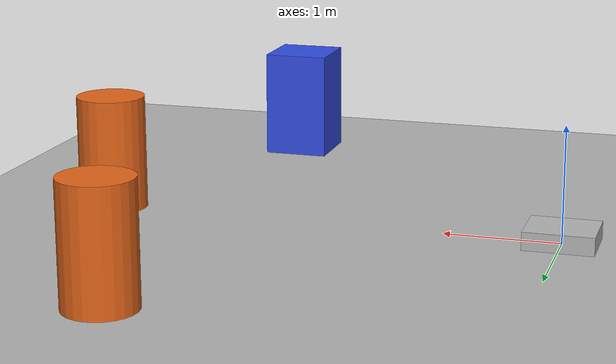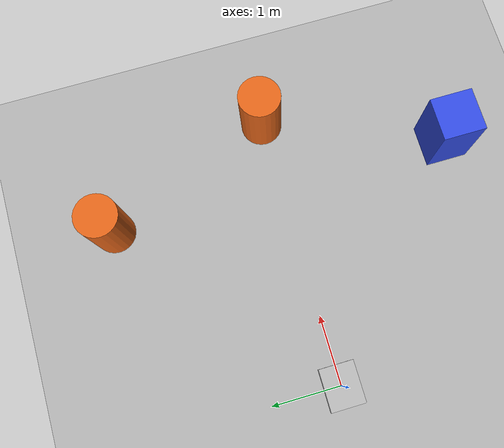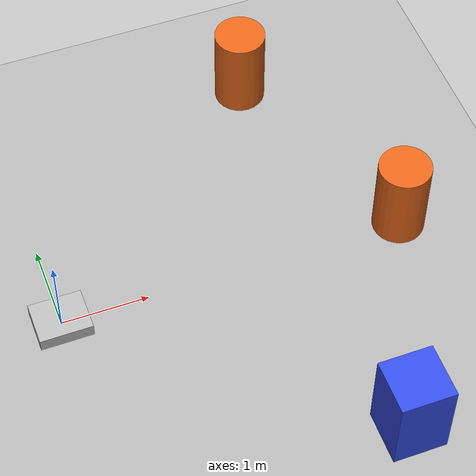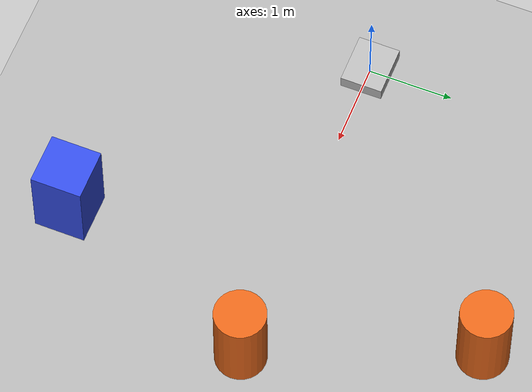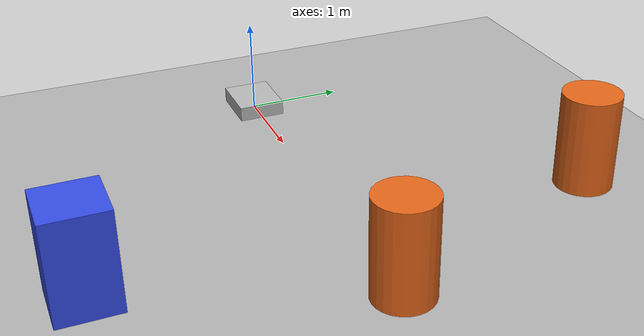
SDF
<?xml version="1.0" ?>
<sdf version="1.9">
  <world name="three_camera_load">

    <physics name="1ms" type="ignored">
      <max_step_size>0.001</max_step_size>
      <real_time_factor>1.0</real_time_factor>
    </physics>

    <plugin filename="gz-sim-physics-system"
            name="gz::sim::systems::Physics"/>
    <plugin filename="gz-sim-user-commands-system"
            name="gz::sim::systems::UserCommands"/>
    <plugin filename="gz-sim-scene-broadcaster-system"
            name="gz::sim::systems::SceneBroadcaster"/>
    <plugin filename="gz-sim-sensors-system"
            name="gz::sim::systems::Sensors">
      <render_engine>ogre2</render_engine>
    </plugin>

    <light type="directional" name="sun">
      <cast_shadows>true</cast_shadows>
      <pose>0 0 10 0 0 0</pose>
      <diffuse>0.9 0.9 0.9 1</diffuse>
      <specular>0.2 0.2 0.2 1</specular>
      <direction>-0.5 0.1 -0.9</direction>
    </light>

    <model name="ground_plane">
      <static>true</static>
      <link name="link">
        <collision name="collision">
          <geometry><plane><normal>0 0 1</normal><size>100 100</size></plane></geometry>
        </collision>
        <visual name="visual">
          <geometry><plane><normal>0 0 1</normal><size>100 100</size></plane></geometry>
          <material>
            <ambient>0.7 0.7 0.7 1</ambient>
            <diffuse>0.7 0.7 0.7 1</diffuse>
          </material>
        </visual>
      </link>
    </model>

    <!-- Give the depth cameras real geometry to resolve; an empty scene makes
         depth rendering unrealistically cheap. -->
    <model name="clutter_a">
      <pose>4 0 0.5 0 0 0</pose>
      <link name="link">
        <collision name="c"><geometry><cylinder><radius>0.3</radius><length>1.0</length></cylinder></geometry></collision>
        <visual name="v">
          <geometry><cylinder><radius>0.3</radius><length>1.0</length></cylinder></geometry>
          <material><ambient>0.9 0.4 0.1 1</ambient><diffuse>0.9 0.4 0.1 1</diffuse></material>
        </visual>
      </link>
    </model>
    <model name="clutter_b">
      <pose>3 2.5 0.5 0 0 0</pose>
      <link name="link">
        <collision name="c"><geometry><cylinder><radius>0.3</radius><length>1.0</length></cylinder></geometry></collision>
        <visual name="v">
          <geometry><cylinder><radius>0.3</radius><length>1.0</length></cylinder></geometry>
          <material><ambient>0.9 0.4 0.1 1</ambient><diffuse>0.9 0.4 0.1 1</diffuse></material>
        </visual>
      </link>
    </model>
    <model name="clutter_c">
      <pose>3 -2.5 0.5 0 0 0</pose>
      <link name="link">
        <collision name="c"><geometry><box><size>0.6 0.6 1.0</size></box></geometry></collision>
        <visual name="v">
          <geometry><box><size>0.6 0.6 1.0</size></box></geometry>
          <material><ambient>0.2 0.3 0.9 1</ambient><diffuse>0.2 0.3 0.9 1</diffuse></material>
        </visual>
      </link>
    </model>

    <model name="sensor_rig">
      <static>true</static>
      <pose>0 0 0 0 0 0</pose>
      <link name="chassis_link">
        <visual name="visual">
          <geometry><box><size>0.6 0.5 0.3</size></box></geometry>
        </visual>

        <!-- left_zed_camera_x: 0.361 0.18 0.248, rpy 0 10deg 95deg -->
        <sensor name="left_zed" type="rgbd_camera">
          <pose>0.361 0.18 0.248 0 0.1745 1.6581</pose>
          <always_on>1</always_on>
          <update_rate>30</update_rate>
          <topic>zed_left</topic>
          <camera>
            <horizontal_fov>1.7</horizontal_fov>
            <image><width>1280</width><height>720</height></image>
            <clip><near>0.3</near><far>20</far></clip>
          </camera>
        </sensor>

        <!-- front_zed_camera_x: 0.405 0 0.246, rpy 0 0 0 -->
        <sensor name="front_zed" type="rgbd_camera">
          <pose>0.405 0 0.246 0 0 0</pose>
          <always_on>1</always_on>
          <update_rate>30</update_rate>
          <topic>zed_front</topic>
          <camera>
            <horizontal_fov>1.7</horizontal_fov>
            <image><width>1280</width><height>720</height></image>
            <clip><near>0.3</near><far>20</far></clip>
          </camera>
        </sensor>

        <!-- right_zed_camera_x: 0.359 -0.195 0.251, rpy 0 10deg -95deg -->
        <sensor name="right_zed" type="rgbd_camera">
          <pose>0.359 -0.195 0.251 0 0.1745 -1.6581</pose>
          <always_on>1</always_on>
          <update_rate>30</update_rate>
          <topic>zed_right</topic>
          <camera>
            <horizontal_fov>1.7</horizontal_fov>
            <image><width>1280</width><height>720</height></image>
            <clip><near>0.3</near><far>20</far></clip>
          </camera>
        </sensor>

        <!-- top_rplidar_c1: 0.225 0 0.46 -->
        <sensor name="rplidar" type="gpu_lidar">
          <pose>0.225 0 0.46 0 0 0</pose>
          <always_on>1</always_on>
          <update_rate>10</update_rate>
          <topic>scan</topic>
          <lidar>
            <scan>
              <horizontal>
                <samples>720</samples>
                <resolution>1</resolution>
                <min_angle>-3.14159</min_angle>
                <max_angle>3.14159</max_angle>
              </horizontal>
            </scan>
            <range><min>0.15</min><max>12.0</max><resolution>0.01</resolution></range>
          </lidar>
        </sensor>
      </link>
    </model>

  </world>
</sdf>
